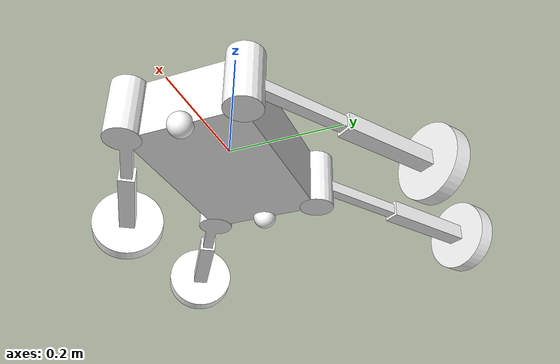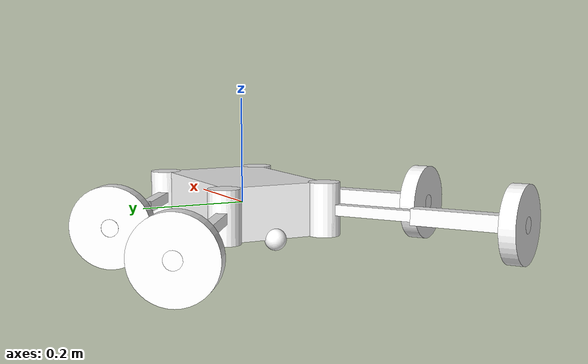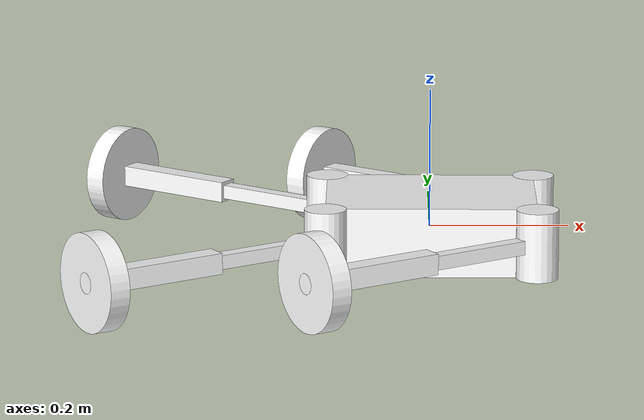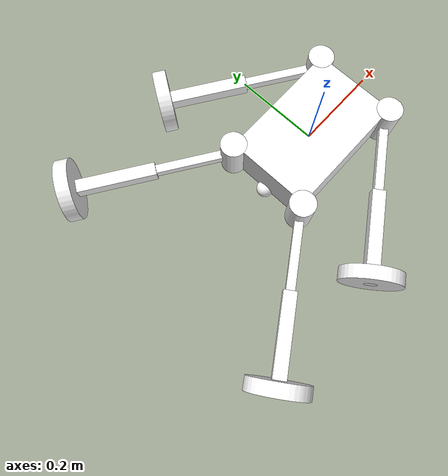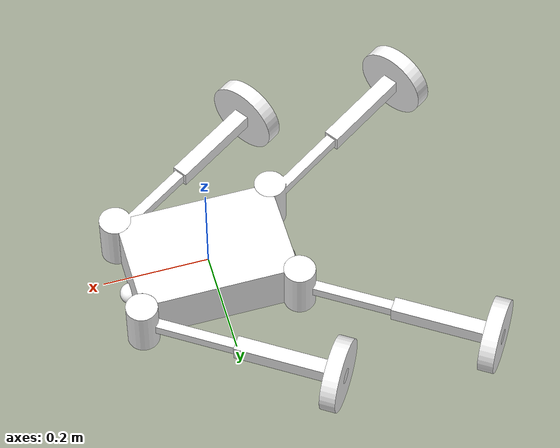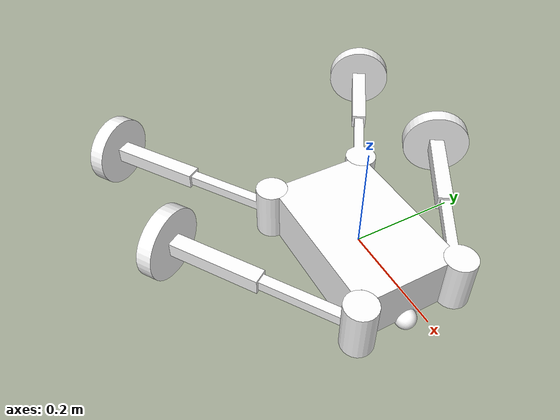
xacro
<?xml version="1.0" encoding="utf-8"?>
<robot
  name="roller_3rd"
  xmlns:xacro="http://ros.org/wiki/xacro">

  <xacro:include filename="$(find roller_3rd)/urdf/roller_3rd.gazebo.xacro"/>

  <xacro:property name="PI" value="3.14159265"/>

  <xacro:property name="Damping" value="1.0"/>
  <xacro:property name="Friction" value="0.3"/>

  <link
    name="base_link">
    <inertial>
      <origin
        xyz="0.00165468528771355 0 3.46944695195361E-18"
        rpy="0 0 0" />
      <mass
        value="5.71725666117692" />
      <inertia
        ixx="0.0225933299115147"
        ixy="-7.6232965252887E-18"
        ixz="-8.65561792975497E-20"
        iyy="0.0444190381762262"
        iyz="-5.95570041038183E-20"
        izz="0.0574836069857794" />
    </inertial>
    <visual>
      <origin
        xyz="0 0 0"
        rpy="0 0 0" />
      <geometry>
        <mesh
          filename="package://roller_3rd/meshes/base_link.STL" />
      </geometry>
      <material
        name="">
        <color
          rgba="1 1 1 1" />
      </material>
    </visual>
    <collision>
      <origin
        xyz="0 0 0"
        rpy="0 0 0" />
      <geometry>
        <mesh
          filename="package://roller_3rd/meshes/base_link.STL" />
      </geometry>
    </collision>
  </link>
  <link
    name="leg1_1_link">
    <inertial>
      <origin
        xyz="0.0229508358714046 5.55111512312578E-17 9.54097911787244E-18"
        rpy="0 0 0" />
      <mass
        value="0.350969420203415" />
      <inertia
        ixx="0.000303791179644144"
        ixy="5.42101086242752E-20"
        ixz="-9.10079262163607E-20"
        iyy="0.00119023844034398"
        iyz="-5.26721073892596E-21"
        izz="0.00101824231652429" />
    </inertial>
    <visual>
      <origin
        xyz="0 0 0"
        rpy="0 0 0" />
      <geometry>
        <mesh
          filename="package://roller_3rd/meshes/leg1_1_link.STL" />
      </geometry>
      <material
        name="">
        <color
          rgba="1 1 1 1" />
      </material>
    </visual>
    <collision>
      <origin
        xyz="0 0 0"
        rpy="0 0 0" />
      <geometry>
        <mesh
          filename="package://roller_3rd/meshes/leg1_1_link.STL" />
      </geometry>
    </collision>
  </link>
  <joint
    name="leg1_1_joint"
    type="continuous">
    <origin
      xyz="-0.147803901741747 -0.0996390580196406 0"
      rpy="0 0 -2.55359005004223" />
    <parent
      link="base_link" />
    <child
      link="leg1_1_link" />
    <axis
      xyz="0 0 1" />
    <limit
      lower="0"
      upper="6.2"
      effort="0"
      velocity="3" />
    <dynamics damping="${Damping}" friction="${Friction}"/>
  </joint>
  <link
    name="leg1_2_Link">
    <inertial>
      <origin
        xyz="0.0200223800027242 -5.55111512312578E-17 -0.015"
        rpy="0 0 0" />
      <mass
        value="0.111205750411731" />
      <inertia
        ixx="2.18856469213197E-05"
        ixy="-1.43995601033231E-20"
        ixz="6.48539688484168E-21"
        iyy="0.000444744745767282"
        iyz="-9.0763743139162E-21"
        izz="0.000444744745767282" />
    </inertial>
    <visual>
      <origin
        xyz="0 0 0"
        rpy="0 0 0" />
      <geometry>
        <mesh
          filename="package://roller_3rd/meshes/leg1_2_Link.STL" />
      </geometry>
      <material
        name="">
        <color
          rgba="1 1 1 1" />
      </material>
    </visual>
    <collision>
      <origin
        xyz="0 0 0"
        rpy="0 0 0" />
      <geometry>
        <mesh
          filename="package://roller_3rd/meshes/leg1_2_Link.STL" />
      </geometry>
    </collision>
  </link>
  <joint
    name="leg1_2_joint"
    type="prismatic">
    <origin
      xyz="0.270650697408827 0 0.015"
      rpy="0 0 0" />
    <parent
      link="leg1_1_link" />
    <child
      link="leg1_2_Link" />
    <axis
      xyz="-1 0 0" />
    <limit
      lower="0"
      upper="0.2"
      effort="0"
      velocity="3" />
    <dynamics damping="${Damping}" friction="${Friction}"/>
  </joint>
  <link
    name="leg1_3_Link">
    <inertial>
      <origin
        xyz="2.60208521396521E-18 -1.11022302462516E-16 2.22044604925031E-16"
        rpy="0 0 0" />
      <mass
        value="0.440608369665969" />
      <inertia
        ixx="0.00059757510135947"
        ixy="-1.13051991884092E-19"
        ixz="-3.71158038358037E-20"
        iyy="0.00059757510135947"
        iyz="-2.98155597433514E-19"
        izz="0.00112905894726905" />
    </inertial>
    <visual>
      <origin
        xyz="0 0 0"
        rpy="0 0 0" />
      <geometry>
        <mesh
          filename="package://roller_3rd/meshes/leg1_3_Link.STL" />
      </geometry>
      <material
        name="">
        <color
          rgba="1 1 1 1" />
      </material>
    </visual>
    <collision>
      <origin
        xyz="0 0 0"
        rpy="0 0 0" />
      <geometry>
        <mesh
          filename="package://roller_3rd/meshes/leg1_3_Link.STL" />
      </geometry>
    </collision>
  </link>
  <joint
    name="leg1_3_joint"
    type="continuous">
    <origin
      xyz="0.105 0 -0.0150000000000001"
      rpy="0 -1.5707963267949 0" />
    <parent
      link="leg1_2_Link" />
    <child
      link="leg1_3_Link" />
    <axis
      xyz="0 0 -1" />
    <dynamics damping="${Damping}" friction="${Friction}"/>
  </joint>
  <link
    name="leg2_1_Link">
    <inertial>
      <origin
        xyz="0.0229508358714045 5.55111512312578E-17 5.20417042793042E-18"
        rpy="0 0 0" />
      <mass
        value="0.350969420203415" />
      <inertia
        ixx="0.000303791179644144"
        ixy="-2.98155597433514E-19"
        ixz="-1.5297854950715E-20"
        iyy="0.00119023844034398"
        iyz="7.68595383024475E-22"
        izz="0.0010182423165243" />
    </inertial>
    <visual>
      <origin
        xyz="0 0 0"
        rpy="0 0 0" />
      <geometry>
        <mesh
          filename="package://roller_3rd/meshes/leg2_1_Link.STL" />
      </geometry>
      <material
        name="">
        <color
          rgba="1 1 1 1" />
      </material>
    </visual>
    <collision>
      <origin
        xyz="0 0 0"
        rpy="0 0 0" />
      <geometry>
        <mesh
          filename="package://roller_3rd/meshes/leg2_1_Link.STL" />
      </geometry>
    </collision>
  </link>
  <joint
    name="leg2_1_joint"
    type="continuous">
    <origin
      xyz="-0.147803901741747 0.0996390580196404 0"
      rpy="0 0 2.55359005004223" />
    <parent
      link="base_link" />
    <child
      link="leg2_1_Link" />
    <axis
      xyz="0 0 1" />
    <limit
      lower="0"
      upper="6.2"
      effort="0"
      velocity="3" />
    <dynamics damping="${Damping}" friction="${Friction}"/>
  </joint>
  <link
    name="leg2_2_Link">
    <inertial>
      <origin
        xyz="0.020022380002724 2.77555756156289E-17 -0.015"
        rpy="0 0 0" />
      <mass
        value="0.111205750411731" />
      <inertia
        ixx="2.18856469213197E-05"
        ixy="6.52215369385811E-20"
        ixz="2.59774815791434E-20"
        iyy="0.000444744745767282"
        iyz="-4.00054201737798E-22"
        izz="0.000444744745767282" />
    </inertial>
    <visual>
      <origin
        xyz="0 0 0"
        rpy="0 0 0" />
      <geometry>
        <mesh
          filename="package://roller_3rd/meshes/leg2_2_Link.STL" />
      </geometry>
      <material
        name="">
        <color
          rgba="1 1 1 1" />
      </material>
    </visual>
    <collision>
      <origin
        xyz="0 0 0"
        rpy="0 0 0" />
      <geometry>
        <mesh
          filename="package://roller_3rd/meshes/leg2_2_Link.STL" />
      </geometry>
    </collision>
  </link>
  <joint
    name="leg2_2_joint"
    type="prismatic">
    <origin
      xyz="0.270650697408827 0 0.015"
      rpy="0 0 0" />
    <parent
      link="leg2_1_Link" />
    <child
      link="leg2_2_Link" />
    <axis
      xyz="1 0 0" />
    <limit
      lower="0"
      upper="0.2"
      effort="0"
      velocity="3" />
    <dynamics damping="${Damping}" friction="${Friction}"/>
  </joint>
  <link
    name="leg2_3_Link">
    <inertial>
      <origin
        xyz="-8.67361737988404E-19 0 0"
        rpy="0 0 0" />
      <mass
        value="0.440608369665969" />
      <inertia
        ixx="0.00059757510135947"
        ixy="-6.00188944931832E-20"
        ixz="5.02128542454901E-21"
        iyy="0.00059757510135947"
        iyz="-2.43945488809238E-19"
        izz="0.00112905894726905" />
    </inertial>
    <visual>
      <origin
        xyz="0 0 0"
        rpy="0 0 0" />
      <geometry>
        <mesh
          filename="package://roller_3rd/meshes/leg2_3_Link.STL" />
      </geometry>
      <material
        name="">
        <color
          rgba="1 1 1 1" />
      </material>
    </visual>
    <collision>
      <origin
        xyz="0 0 0"
        rpy="0 0 0" />
      <geometry>
        <mesh
          filename="package://roller_3rd/meshes/leg2_3_Link.STL" />
      </geometry>
    </collision>
  </link>
  <joint
    name="leg2_3_joint"
    type="continuous">
    <origin
      xyz="0.105 0 -0.015"
      rpy="0 -1.5707963267949 0" />
    <parent
      link="leg2_2_Link" />
    <child
      link="leg2_3_Link" />
    <axis
      xyz="0 0 -1" />
    <dynamics damping="${Damping}" friction="${Friction}"/>
  </joint>
  <link
    name="leg3_1_Link">
    <inertial>
      <origin
        xyz="0.0229508358714045 1.38777878078145E-17 8.67361737988404E-18"
        rpy="0 0 0" />
      <mass
        value="0.350969420203415" />
      <inertia
        ixx="0.000303791179644144"
        ixy="1.35525271560688E-20"
        ixz="-9.11069723201289E-20"
        iyy="0.00119023844034398"
        iyz="2.09135589396779E-20"
        izz="0.0010182423165243" />
    </inertial>
    <visual>
      <origin
        xyz="0 0 0"
        rpy="0 0 0" />
      <geometry>
        <mesh
          filename="package://roller_3rd/meshes/leg3_1_Link.STL" />
      </geometry>
      <material
        name="">
        <color
          rgba="1 1 1 1" />
      </material>
    </visual>
    <collision>
      <origin
        xyz="0 0 0"
        rpy="0 0 0" />
      <geometry>
        <mesh
          filename="package://roller_3rd/meshes/leg3_1_Link.STL" />
      </geometry>
    </collision>
  </link>
  <joint
    name="leg3_1_joint"
    type="continuous">
    <origin
      xyz="0.152196098258253 0.0996390580196404 0"
      rpy="0 0 2.55359005004223" />
    <parent
      link="base_link" />
    <child
      link="leg3_1_Link" />
    <axis
      xyz="0 0 1" />
    <limit
      lower="0"
      upper="6.2"
      effort="0"
      velocity="3" />
    <dynamics damping="${Damping}" friction="${Friction}"/>
  </joint>
  <link
    name="leg3_2_Link">
    <inertial>
      <origin
        xyz="0.0200223800027241 2.77555756156289E-17 -0.015"
        rpy="0 0 0" />
      <mass
        value="0.111205750411731" />
      <inertia
        ixx="2.18856469213199E-05"
        ixy="-7.19978005166155E-20"
        ixz="-5.05252716274659E-21"
        iyy="0.000444744745767282"
        iyz="5.04720972906554E-21"
        izz="0.000444744745767282" />
    </inertial>
    <visual>
      <origin
        xyz="0 0 0"
        rpy="0 0 0" />
      <geometry>
        <mesh
          filename="package://roller_3rd/meshes/leg3_2_Link.STL" />
      </geometry>
      <material
        name="">
        <color
          rgba="1 1 1 1" />
      </material>
    </visual>
    <collision>
      <origin
        xyz="0 0 0"
        rpy="0 0 0" />
      <geometry>
        <mesh
          filename="package://roller_3rd/meshes/leg3_2_Link.STL" />
      </geometry>
    </collision>
  </link>
  <joint
    name="leg3_2_joint"
    type="prismatic">
    <origin
      xyz="0.270650697408827 0 0.015"
      rpy="0 0 0" />
    <parent
      link="leg3_1_Link" />
    <child
      link="leg3_2_Link" />
    <axis
      xyz="-1 0 0" />
    <limit
      lower="0"
      upper="0.2"
      effort="0"
      velocity="3" />
    <dynamics damping="${Damping}" friction="${Friction}"/>
  </joint>
  <link
    name="leg3_3_Link">
    <inertial>
      <origin
        xyz="1.73472347597681E-18 0 0"
        rpy="0 0 0" />
      <mass
        value="0.440608369665969" />
      <inertia
        ixx="0.00059757510135947"
        ixy="3.73750468809786E-20"
        ixz="-2.80484915575377E-20"
        iyy="0.000597575101359471"
        iyz="-5.42101086242752E-20"
        izz="0.00112905894726905" />
    </inertial>
    <visual>
      <origin
        xyz="0 0 0"
        rpy="0 0 0" />
      <geometry>
        <mesh
          filename="package://roller_3rd/meshes/leg3_3_Link.STL" />
      </geometry>
      <material
        name="">
        <color
          rgba="1 1 1 1" />
      </material>
    </visual>
    <collision>
      <origin
        xyz="0 0 0"
        rpy="0 0 0" />
      <geometry>
        <mesh
          filename="package://roller_3rd/meshes/leg3_3_Link.STL" />
      </geometry>
    </collision>
  </link>
  <joint
    name="leg3_3_joint"
    type="continuous">
    <origin
      xyz="0.105 0 -0.015"
      rpy="0 -1.5707963267949 0" />
    <parent
      link="leg3_2_Link" />
    <child
      link="leg3_3_Link" />
    <axis
      xyz="0 0 -1" />
    <dynamics damping="${Damping}" friction="${Friction}"/>
  </joint>
  <link
    name="leg4_1_Link">
    <inertial>
      <origin
        xyz="0.0229508358714045 -5.55111512312578E-17 7.80625564189563E-18"
        rpy="0 0 0" />
      <mass
        value="0.350969420203415" />
      <inertia
        ixx="0.000303791179644144"
        ixy="-4.47233396150271E-19"
        ixz="-8.15599673895411E-20"
        iyy="0.00119023844034398"
        iyz="-4.73300249352711E-21"
        izz="0.0010182423165243" />
    </inertial>
    <visual>
      <origin
        xyz="0 0 0"
        rpy="0 0 0" />
      <geometry>
        <mesh
          filename="package://roller_3rd/meshes/leg4_1_Link.STL" />
      </geometry>
      <material
        name="">
        <color
          rgba="1 1 1 1" />
      </material>
    </visual>
    <collision>
      <origin
        xyz="0 0 0"
        rpy="0 0 0" />
      <geometry>
        <mesh
          filename="package://roller_3rd/meshes/leg4_1_Link.STL" />
      </geometry>
    </collision>
  </link>
  <joint
    name="leg4_1_joint"
    type="continuous">
    <origin
      xyz="0.152196098258253 -0.0996390580196402 0"
      rpy="0 0 -2.55359005004222" />
    <parent
      link="base_link" />
    <child
      link="leg4_1_Link" />
    <axis
      xyz="0 0 1" />
    <limit
      lower="0"
      upper="6.2"
      effort="0"
      velocity="3" />
    <dynamics damping="${Damping}" friction="${Friction}"/>
  </joint>
  <link
    name="leg4_2_Link">
    <inertial>
      <origin
        xyz="0.0200223800027241 -5.55111512312578E-17 -0.015"
        rpy="0 0 0" />
      <mass
        value="0.111205750411731" />
      <inertia
        ixx="2.18856469213198E-05"
        ixy="-7.96210970419042E-20"
        ixz="1.16022162491616E-20"
        iyy="0.000444744745767282"
        iyz="-4.67091092771267E-21"
        izz="0.000444744745767282" />
    </inertial>
    <visual>
      <origin
        xyz="0 0 0"
        rpy="0 0 0" />
      <geometry>
        <mesh
          filename="package://roller_3rd/meshes/leg4_2_Link.STL" />
      </geometry>
      <material
        name="">
        <color
          rgba="1 1 1 1" />
      </material>
    </visual>
    <collision>
      <origin
        xyz="0 0 0"
        rpy="0 0 0" />
      <geometry>
        <mesh
          filename="package://roller_3rd/meshes/leg4_2_Link.STL" />
      </geometry>
    </collision>
  </link>
  <joint
    name="leg4_2_joint"
    type="prismatic">
    <origin
      xyz="0.270650697408827 0 0.0149999999999999"
      rpy="0 0 0" />
    <parent
      link="leg4_1_Link" />
    <child
      link="leg4_2_Link" />
    <axis
      xyz="-1 0 0" />
    <limit
      lower="0"
      upper="0.2"
      effort="0"
      velocity="3" />
    <dynamics damping="${Damping}" friction="${Friction}"/>
  </joint>
  <link
    name="leg4_3_Link">
    <inertial>
      <origin
        xyz="-1.73472347597681E-18 -1.11022302462516E-16 1.11022302462516E-16"
        rpy="0 0 0" />
      <mass
        value="0.440608369665969" />
      <inertia
        ixx="0.000597575101359471"
        ixy="1.99001385197597E-19"
        ixz="-1.30912365153136E-20"
        iyy="0.000597575101359471"
        iyz="0"
        izz="0.00112905894726905" />
    </inertial>
    <visual>
      <origin
        xyz="0 0 0"
        rpy="0 0 0" />
      <geometry>
        <mesh
          filename="package://roller_3rd/meshes/leg4_3_Link.STL" />
      </geometry>
      <material
        name="">
        <color
          rgba="1 1 1 1" />
      </material>
    </visual>
    <collision>
      <origin
        xyz="0 0 0"
        rpy="0 0 0" />
      <geometry>
        <mesh
          filename="package://roller_3rd/meshes/leg4_3_Link.STL" />
      </geometry>
    </collision>
  </link>
  <joint
    name="leg4_3_joint"
    type="continuous">
    <origin
      xyz="0.105 0 -0.0149999999999999"
      rpy="0 -1.5707963267949 0" />
    <parent
      link="leg4_2_Link" />
    <child
      link="leg4_3_Link" />
    <axis
      xyz="0 0 -1" />
    <dynamics damping="${Damping}" friction="${Friction}"/>
  </joint>
  <link
    name="mecanum1_link">
    <inertial>
      <origin
        xyz="0 0 0"
        rpy="0 0 0" />
      <mass
        value="0.0335103216382911" />
      <inertia
        ixx="5.36165146212658E-06"
        ixy="0"
        ixz="-9.4039548065783E-38"
        iyy="5.36165146212658E-06"
        iyz="-2.35098870164458E-38"
        izz="5.36165146212658E-06" />
    </inertial>
    <visual>
      <origin
        xyz="0 0 0"
        rpy="0 0 0" />
      <geometry>
        <mesh
          filename="package://roller_3rd/meshes/mecanum1_link.STL" />
      </geometry>
      <material
        name="">
        <color
          rgba="1 1 1 1" />
      </material>
    </visual>
    <collision>
      <origin
        xyz="0 0 0"
        rpy="0 0 0" />
      <geometry>
        <mesh
          filename="package://roller_3rd/meshes/mecanum1_link.STL" />
      </geometry>
    </collision>
  </link>
  <joint
    name="mecanum1_joint"
    type="continuous">
    <origin
      xyz="0.15165 0 -0.05"
      rpy="0 0 3.1416" />
    <parent
      link="base_link" />
    <child
      link="mecanum1_link" />
    <axis
      xyz="0 0 1" />
    <limit
      lower="0"
      upper="6.2"
      effort="0"
      velocity="0" />
    <dynamics damping="${Damping}" friction="${Friction}"/>
  </joint>
  <link
    name="mecanum2_link">
    <inertial>
      <origin
        xyz="0 -5.55111512312578E-17 0"
        rpy="0 0 0" />
      <mass
        value="0.0335103216382911" />
      <inertia
        ixx="5.36165146212658E-06"
        ixy="0"
        ixz="0"
        iyy="5.36165146212658E-06"
        iyz="0"
        izz="5.36165146212658E-06" />
    </inertial>
    <visual>
      <origin
        xyz="0 0 0"
        rpy="0 0 0" />
      <geometry>
        <mesh
          filename="package://roller_3rd/meshes/mecanum2_link.STL" />
      </geometry>
      <material
        name="">
        <color
          rgba="1 1 1 1" />
      </material>
    </visual>
    <collision>
      <origin
        xyz="0 0 0"
        rpy="0 0 0" />
      <geometry>
        <mesh
          filename="package://roller_3rd/meshes/mecanum2_link.STL" />
      </geometry>
    </collision>
  </link>
  <joint
    name="mecanum2_joint"
    type="continuous">
    <origin
      xyz="-0.14835 0 -0.05"
      rpy="0 0 3.1416" />
    <parent
      link="base_link" />
    <child
      link="mecanum2_link" />
    <axis
      xyz="0 0 1" />
    <limit
      lower="0"
      upper="6.2"
      effort="0"
      velocity="0" />
    <dynamics damping="${Damping}" friction="${Friction}"/>
  </joint>
</robot>
